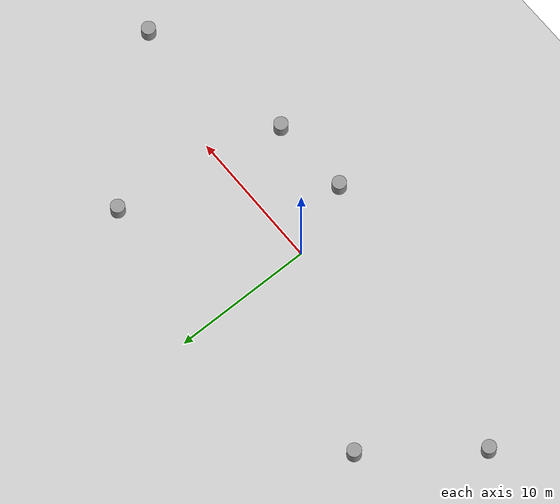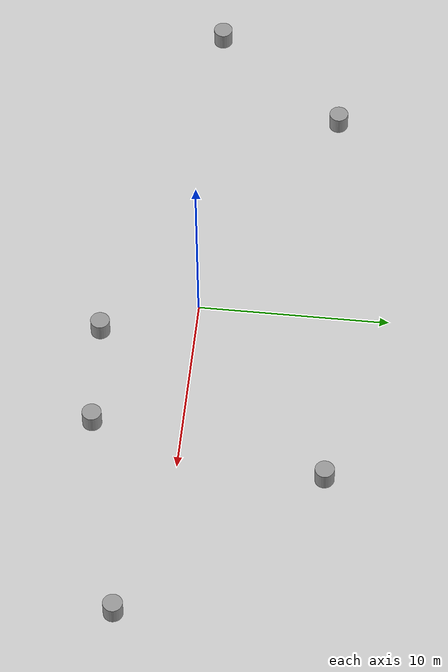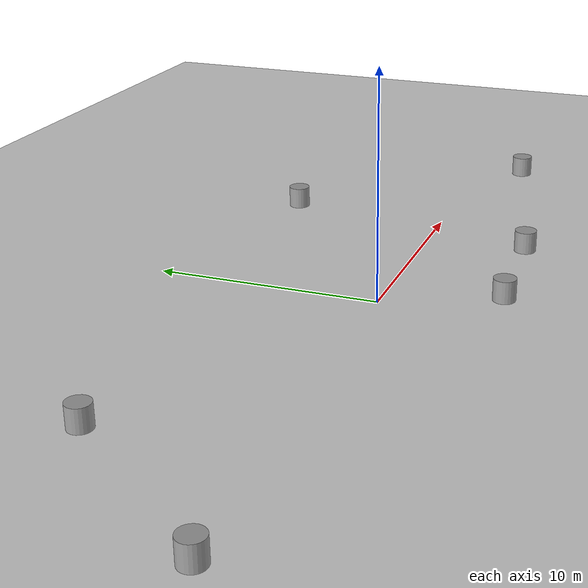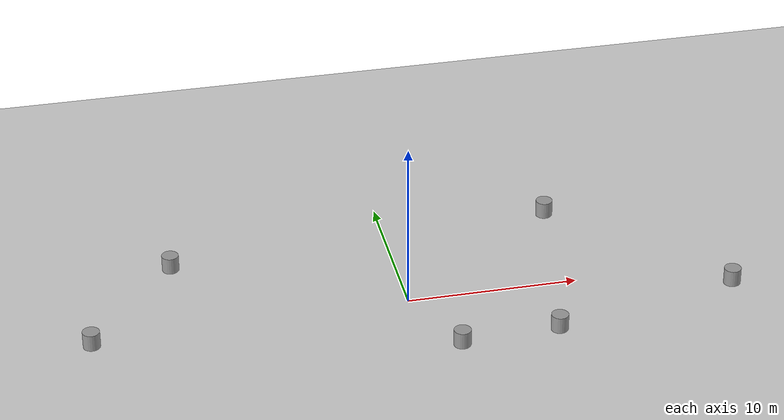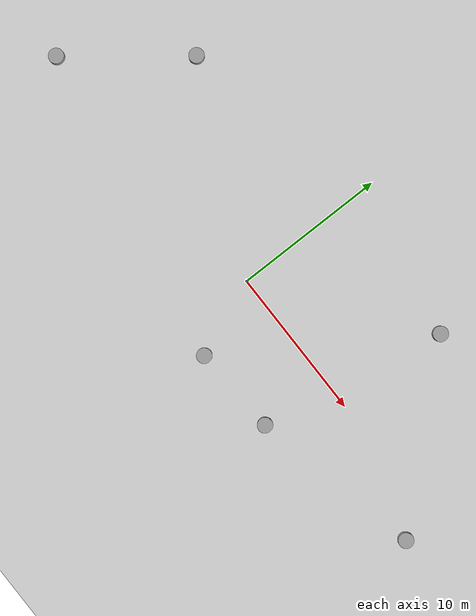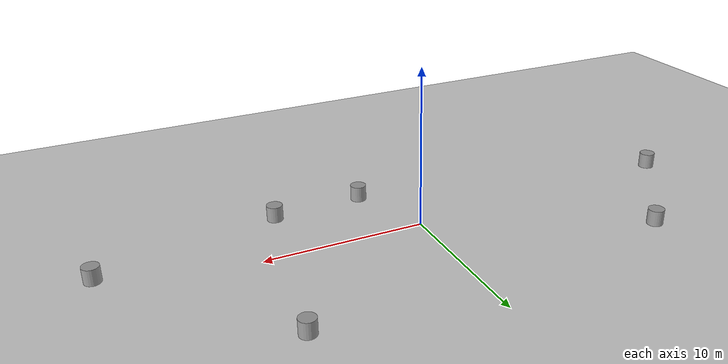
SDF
<sdf version="1.7">
 <world name="default">
  <light name="sun" type="directional">
   <pose>0 0 10 0 -0 0</pose>
   <diffuse>0.8 0.8 0.8 1</diffuse>
   <specular>0.2 0.2 0.2 1</specular>
   <attenuation>
    <range>1000</range>
    <constant>0.9</constant>
    <linear>0.01</linear>
    <quadratic>0.001</quadratic>
   </attenuation>
   <direction>-0.5 0.1 -0.9</direction>
   <spot><inner_angle>0</inner_angle><outer_angle>0</outer_angle><falloff>0</falloff></spot>
  </light>
  <model name="ground_plane">
   <static>1</static>
   <link name="link">
    <collision name="collision">
     <geometry><plane><normal>0 0 1</normal><size>100 100</size></plane></geometry>
     <surface><friction><ode><mu>100</mu><mu2>50</mu2></ode></friction></surface>
    </collision>
    <visual name="visual">
     <cast_shadows>0</cast_shadows>
     <geometry><plane><normal>0 0 1</normal><size>100 100</size></plane></geometry>
     <material>
      <script><uri>file://media/materials/scripts/gazebo.material</uri><name>Gazebo/Grey</name></script>
     </material>
    </visual>
   </link>
  </model>
  <gravity>0 0 -9.8</gravity>
  <magnetic_field>6e-06 2.3e-05 -4.2e-05</magnetic_field>
  <atmosphere type="adiabatic"/>
  <physics type="ode">
   <max_step_size>0.001</max_step_size>
   <real_time_factor>1</real_time_factor>
   <real_time_update_rate>1000</real_time_update_rate>
  </physics>
  <scene><ambient>0.4 0.4 0.4 1</ambient><background>0.7 0.7 0.7 1</background><shadows>1</shadows></scene>
  <audio><device>default</device></audio>
  <spherical_coordinates>
   <surface_model>EARTH_WGS84</surface_model>
   <latitude_deg>32.215543502</latitude_deg>
   <longitude_deg>119.50056749</longitude_deg>
   <elevation>0</elevation>
   <heading_deg>0</heading_deg>
  </spherical_coordinates>
  <model name="unit_cylinder">
   <pose>2.0408 -4.9218 0.499992 -4e-06 4e-06 0</pose>
   <link name="link">
    <inertial>
     <mass>1</mass>
     <inertia><ixx>0.145833</ixx><ixy>0</ixy><ixz>0</ixz><iyy>0.145833</iyy><iyz>0</iyz><izz>0.125</izz></inertia>
    </inertial>
    <collision name="collision">
     <geometry><cylinder><radius>0.5</radius><length>1</length></cylinder></geometry>
    </collision>
    <visual name="visual">
     <geometry><cylinder><radius>0.5</radius><length>1</length></cylinder></geometry>
     <material>
      <script><name>Gazebo/Grey</name><uri>file://media/materials/scripts/gazebo.material</uri></script>
     </material>
    </visual>
   </link>
  </model>
  <model name="unit_cylinder_0">
   <pose>7.78688 -4.61179 0.499993 -3e-06 -3e-06 0</pose>
   <link name="link">
    <inertial>
     <mass>1</mass>
     <inertia><ixx>0.145833</ixx><ixy>0</ixy><ixz>0</ixz><iyy>0.145833</iyy><iyz>0</iyz><izz>0.125</izz></inertia>
    </inertial>
    <collision name="collision">
     <geometry><cylinder><radius>0.5</radius><length>1</length></cylinder></geometry>
    </collision>
    <visual name="visual">
     <geometry><cylinder><radius>0.5</radius><length>1</length></cylinder></geometry>
     <material>
      <script><name>Gazebo/Grey</name><uri>file://media/materials/scripts/gazebo.material</uri></script>
     </material>
    </visual>
   </link>
  </model>
  <model name="unit_cylinder_1">
   <pose>10.0605 7.50719 0.499997 3e-06 4e-06 -0</pose>
   <link name="link">
    <inertial>
     <mass>1</mass>
     <inertia><ixx>0.145833</ixx><ixy>0</ixy><ixz>0</ixz><iyy>0.145833</iyy><iyz>0</iyz><izz>0.125</izz></inertia>
    </inertial>
    <collision name="collision">
     <geometry><cylinder><radius>0.5</radius><length>1</length></cylinder></geometry>
    </collision>
    <visual name="visual">
     <geometry><cylinder><radius>0.5</radius><length>1</length></cylinder></geometry>
     <material>
      <script><name>Gazebo/Grey</name><uri>file://media/materials/scripts/gazebo.material</uri></script>
     </material>
    </visual>
   </link>
  </model>
  <model name="unit_cylinder_2">
   <pose>-12.9733 6.24528 0.499993 -3e-06 -4e-06 -0</pose>
   <link name="link">
    <inertial>
     <mass>1</mass>
     <inertia><ixx>0.145833</ixx><ixy>0</ixy><ixz>0</ixz><iyy>0.145833</iyy><iyz>0</iyz><izz>0.125</izz></inertia>
    </inertial>
    <collision name="collision">
     <geometry><cylinder><radius>0.5</radius><length>1</length></cylinder></geometry>
    </collision>
    <visual name="visual">
     <geometry><cylinder><radius>0.5</radius><length>1</length></cylinder></geometry>
     <material>
      <script><name>Gazebo/Grey</name><uri>file://media/materials/scripts/gazebo.material</uri></script>
     </material>
    </visual>
   </link>
  </model>
  <model name="unit_cylinder_3">
   <pose>-18.3435 -0.65335 0.499993 -3e-06 -4e-06 -0</pose>
   <link name="link">
    <inertial>
     <mass>1</mass>
     <inertia><ixx>0.145833</ixx><ixy>0</ixy><ixz>0</ixz><iyy>0.145833</iyy><iyz>0</iyz><izz>0.125</izz></inertia>
    </inertial>
    <collision name="collision">
     <geometry><cylinder><radius>0.5</radius><length>1</length></cylinder></geometry>
    </collision>
    <visual name="visual">
     <geometry><cylinder><radius>0.5</radius><length>1</length></cylinder></geometry>
     <material>
      <script><name>Gazebo/Grey</name><uri>file://media/materials/scripts/gazebo.material</uri></script>
     </material>
    </visual>
   </link>
  </model>
  <model name="unit_cylinder_4">
   <pose>18.8633 -2.1331 0.499997 3e-06 4e-06 -0</pose>
   <link name="link">
    <inertial>
     <mass>1</mass>
     <inertia><ixx>0.145833</ixx><ixy>0</ixy><ixz>0</ixz><iyy>0.145833</iyy><iyz>0</iyz><izz>0.125</izz></inertia>
    </inertial>
    <collision name="collision">
     <geometry><cylinder><radius>0.5</radius><length>1</length></cylinder></geometry>
    </collision>
    <visual name="visual">
     <geometry><cylinder><radius>0.5</radius><length>1</length></cylinder></geometry>
     <material>
      <script><name>Gazebo/Grey</name><uri>file://media/materials/scripts/gazebo.material</uri></script>
     </material>
    </visual>
   </link>
  </model>
 </world>
</sdf>
